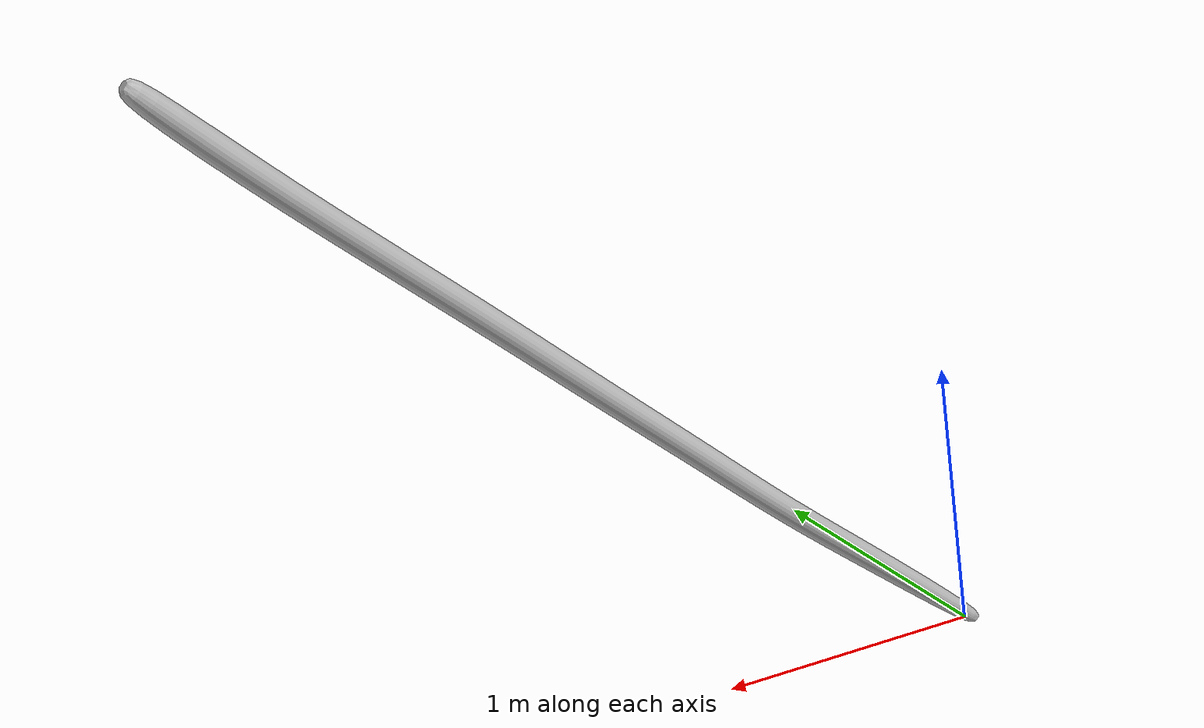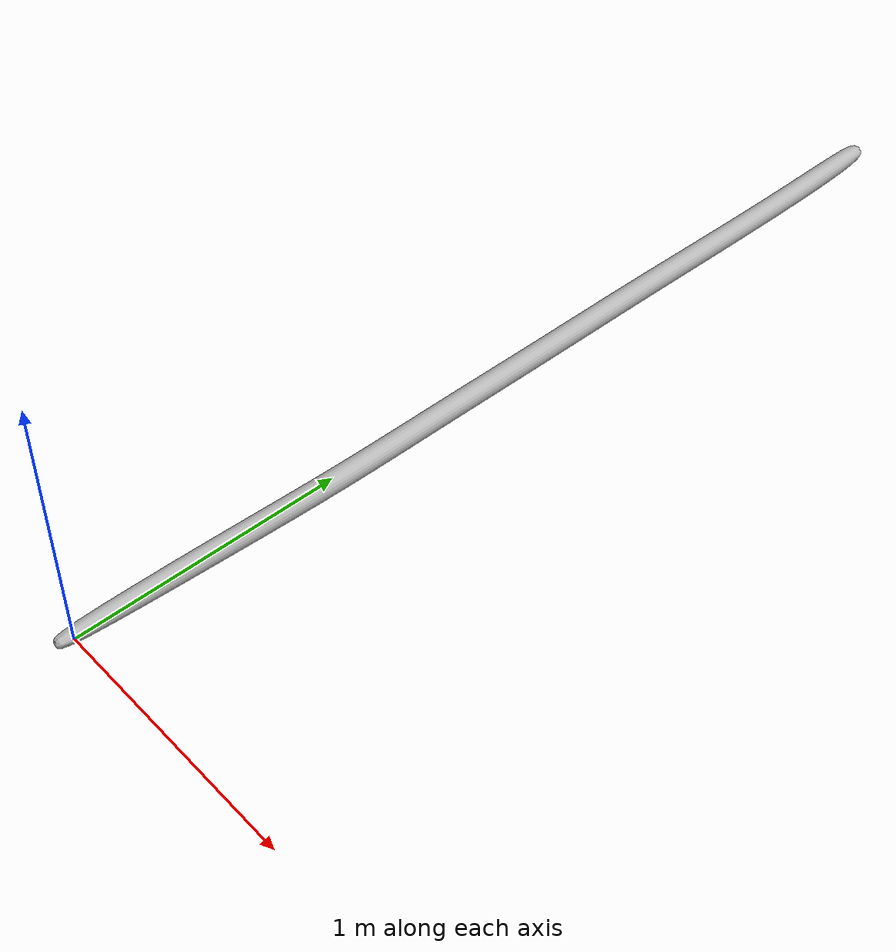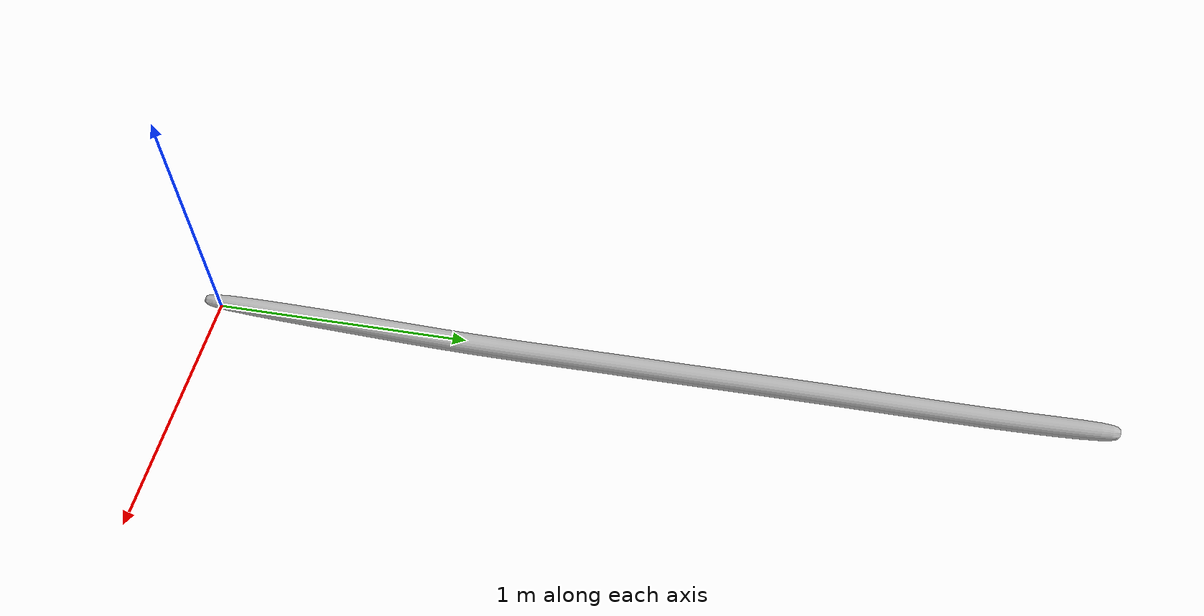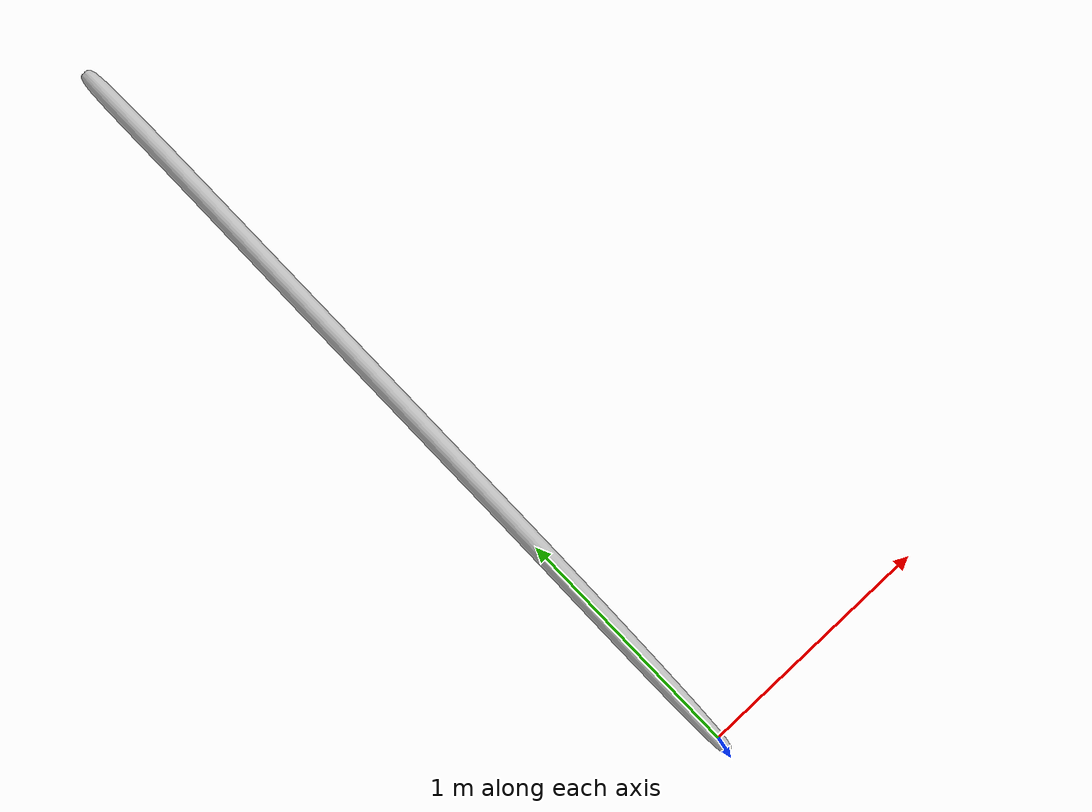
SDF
<?xml version="1.0" ?>
<sdf version="1.6">
  <model name="stick">
    <static>true</static>
    <link name="link">
      <collision name="collision">
        <pose>0 0 0 0 -0 0</pose>
        <geometry>
          <mesh>
            <scale>1 1 1</scale>
            <uri>model://stick/meshes/stick.dae</uri>
          </mesh>
        </geometry>
      </collision>
      <visual name="visual">
        <pose>0 0 0 0 -0 0</pose>
        <geometry>
          <mesh>
            <scale>1 1 1</scale>
            <uri>model://stick/meshes/stick.dae</uri>
          </mesh>
        </geometry>
      </visual>
    </link>
  </model>
</sdf>
